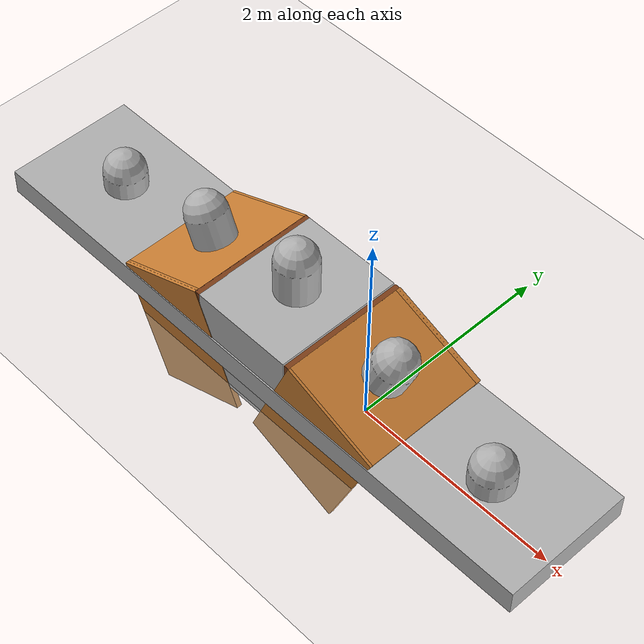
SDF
<?xml version='1.0'?>
<sdf version='1.9'>
  <world name='empty'>
    <physics name='1ms' type='ignored'>
      <max_step_size>0.001</max_step_size>
      <real_time_factor>1</real_time_factor>
      <real_time_update_rate>1000</real_time_update_rate>
    </physics>
    <plugin name='gz::sim::systems::Physics' filename='ignition-gazebo-physics-system' />
    <plugin name='gz::sim::systems::UserCommands' filename='ignition-gazebo-user-commands-system' />
    <plugin name='gz::sim::systems::SceneBroadcaster'
      filename='ignition-gazebo-scene-broadcaster-system' />
    <plugin name='gz::sim::systems::Contact' filename='ignition-gazebo-contact-system' />
    <gravity>0 0 -9.8</gravity>
    <magnetic_field>6e-06 2.3e-05 -4.2e-05</magnetic_field>
    <atmosphere type='adiabatic' />
    <scene>
      <ambient>0.4 0.4 0.4 1</ambient>
      <background>0.7 0.7 0.7 1</background>
      <shadows>true</shadows>
    </scene>
    <model name='ground_plane'>
      <static>true</static>
      <link name='link'>
        <collision name='collision'>
          <geometry>
            <plane>
              <normal>0 0 1</normal>
              <size>100 100</size>
            </plane>
          </geometry>
          <surface>
            <friction>
              <ode />
            </friction>
            <bounce />
            <contact />
          </surface>
        </collision>
        <visual name='visual'>
          <geometry>
            <plane>
              <normal>0 0 1</normal>
              <size>100 100</size>
            </plane>
          </geometry>
          <material>
            <ambient>0.8 0.8 0.8 1</ambient>
            <diffuse>0.8 0.8 0.8 1</diffuse>
            <specular>0.8 0.8 0.8 1</specular>
          </material>
        </visual>
        <pose>0 0 0 0 -0 0</pose>
        <inertial>
          <pose>0 0 0 0 -0 0</pose>
          <mass>1</mass>
          <inertia>
            <ixx>1</ixx>
            <ixy>0</ixy>
            <ixz>0</ixz>
            <iyy>1</iyy>
            <iyz>0</iyz>
            <izz>1</izz>
          </inertia>
        </inertial>
        <enable_wind>false</enable_wind>
      </link>
      <pose>0 0 0 0 -0 0</pose>
      <self_collide>false</self_collide>
    </model>
    <model name='Rampa'>
      <pose>0.194122 0 0.645781 0 0.3732 0</pose>
      <link name='Topo'>
        <inertial>
          <inertia>
            <ixx>0.16666</ixx>
            <ixy>0</ixy>
            <ixz>0</ixz>
            <iyy>0.16666</iyy>
            <iyz>0</iyz>
            <izz>0.16666</izz>
          </inertia>
          <mass>1</mass>
          <pose>0 0 0 0 -0 0</pose>
        </inertial>
        <collision name='Topo_collision'>
          <geometry>
            <box>
              <size>1 1.2 0.05</size>
            </box>
          </geometry>
          <surface>
            <friction>
              <ode />
            </friction>
            <bounce />
            <contact />
          </surface>
        </collision>
        <visual name='Topo_visual'>
          <geometry>
            <box>
              <size>1 1.2 0.05</size>
            </box>
          </geometry>
          <material>
            <ambient>0.8 0.5 0.2 1</ambient>
            <diffuse>0.8 0.5 0.2 1</diffuse>
            <specular>0.4 0.2 0.1 1</specular>
          </material>
        </visual>
        <pose>0 0 0 0 -0 0</pose>
        <enable_wind>false</enable_wind>
      </link>
      <static>true</static>
      <self_collide>false</self_collide>
      <link name='Lad1'>
        <pose>0 0.6 -0.575 1.57 -0 0</pose>
        <inertial>
          <inertia>
            <ixx>0.16666</ixx>
            <ixy>0</ixy>
            <ixz>0</ixz>
            <iyy>0.16666</iyy>
            <iyz>0</iyz>
            <izz>0.16666</izz>
          </inertia>
          <mass>1</mass>
          <pose>0 0 0 0 -0 0</pose>
        </inertial>
        <collision name='Lad1_collision'>
          <geometry>
            <box>
              <size>1 1.2 0.05</size>
            </box>
          </geometry>
          <surface>
            <friction>
              <ode />
            </friction>
            <bounce />
            <contact />
          </surface>
        </collision>
        <visual name='Lad1_visual'>
          <geometry>
            <box>
              <size>1 1.2 0.05</size>
            </box>
          </geometry>
          <material>
            <ambient>0.8 0.5 0.2 1</ambient>
            <diffuse>0.8 0.5 0.2 1</diffuse>
            <specular>0.4 0.2 0.1 1</specular>
          </material>
        </visual>
        <pose>0 0 0 0 -0 0</pose>
        <enable_wind>false</enable_wind>
      </link>
      <link name='Lad2'>
        <pose>0 -0.6 -0.575 1.57 -0 0</pose>
        <inertial>
          <inertia>
            <ixx>0.16666</ixx>
            <ixy>0</ixy>
            <ixz>0</ixz>
            <iyy>0.16666</iyy>
            <iyz>0</iyz>
            <izz>0.16666</izz>
          </inertia>
          <mass>1</mass>
          <pose>0 0 0 0 -0 0</pose>
        </inertial>
        <collision name='Lad2_collision'>
          <geometry>
            <box>
              <size>1 1.2 0.05</size>
            </box>
          </geometry>
          <surface>
            <friction>
              <ode />
            </friction>
            <bounce />
            <contact />
          </surface>
        </collision>
        <visual name='Lad2_visual'>
          <geometry>
            <box>
              <size>1 1.2 0.05</size>
            </box>
          </geometry>
          <material>
            <ambient>0.8 0.5 0.2 1</ambient>
            <diffuse>0.8 0.5 0.2 1</diffuse>
            <specular>0.4 0.2 0.1 1</specular>
          </material>
        </visual>
        <pose>0 0 0 0 -0 0</pose>
        <enable_wind>false</enable_wind>
      </link>
      <link name='Fre'>
        <pose>-0.34 0 -0.45 0 1.2 0</pose>
        <inertial>
          <inertia>
            <ixx>0.16666</ixx>
            <ixy>0</ixy>
            <ixz>0</ixz>
            <iyy>0.16666</iyy>
            <iyz>0</iyz>
            <izz>0.16666</izz>
          </inertia>
          <mass>1</mass>
          <pose>0 0 0 0 -0 0</pose>
        </inertial>
        <collision name='Fre_collision'>
          <geometry>
            <box>
              <size>1 1.24 0.05</size>
            </box>
          </geometry>
          <surface>
            <friction>
              <ode />
            </friction>
            <bounce />
            <contact />
          </surface>
        </collision>
        <visual name='Fre_visual'>
          <geometry>
            <box>
              <size>1 1.24 0.05</size>
            </box>
          </geometry>
          <material>
            <ambient>0.5 0.25 0.1 1</ambient>
            <diffuse>0.5 0.25 0.1 1</diffuse>
            <specular>0.3 0.15 0.05 1</specular>
          </material>
        </visual>
        <pose>0 0 0 0 -0 0</pose>
        <enable_wind>false</enable_wind>
      </link>
      <link name='TopoR2'>
        <pose>-1.86748 0 -0.743436 3.14159 0.776593 3.14159</pose>
        <inertial>
          <inertia>
            <ixx>0.16666</ixx>
            <ixy>0</ixy>
            <ixz>0</ixz>
            <iyy>0.16666</iyy>
            <iyz>0</iyz>
            <izz>0.16666</izz>
          </inertia>
          <mass>1</mass>
          <pose>0 0 0 0 -0 0</pose>
        </inertial>
        <collision name='TopoR2_collision'>
          <geometry>
            <box>
              <size>1 1.2 0.05</size>
            </box>
          </geometry>
          <surface>
            <friction>
              <ode />
            </friction>
            <bounce />
            <contact />
          </surface>
        </collision>
        <visual name='TopoR2_visual'>
          <geometry>
            <box>
              <size>1 1.2 0.05</size>
            </box>
          </geometry>
          <material>
            <ambient>0.8 0.5 0.2 1</ambient>
            <diffuse>0.8 0.5 0.2 1</diffuse>
            <specular>0.4 0.2 0.1 1</specular>
          </material>
        </visual>
        <pose>0 0 0 0 -0 0</pose>
        <enable_wind>false</enable_wind>
      </link>
      <static>true</static>
      <self_collide>false</self_collide>
      <link name='Lad1R2'>
        <pose>-1.46449 0.6 -1.15359 -1.57159 0.776593 3.14159</pose>
        <inertial>
          <inertia>
            <ixx>0.16666</ixx>
            <ixy>0</ixy>
            <ixz>0</ixz>
            <iyy>0.16666</iyy>
            <iyz>0</iyz>
            <izz>0.16666</izz>
          </inertia>
          <mass>1</mass>
          <pose>0 0 0 0 -0 0</pose>
        </inertial>
        <collision name='Lad1R2_collision'>
          <geometry>
            <box>
              <size>1 1.2 0.05</size>
            </box>
          </geometry>
          <surface>
            <friction>
              <ode />
            </friction>
            <bounce />
            <contact />
          </surface>
        </collision>
        <visual name='Lad1R2_visual'>
          <geometry>
            <box>
              <size>1 1.2 0.05</size>
            </box>
          </geometry>
          <material>
            <ambient>0.8 0.5 0.2 1</ambient>
            <diffuse>0.8 0.5 0.2 1</diffuse>
            <specular>0.4 0.2 0.1 1</specular>
          </material>
        </visual>
        <pose>0 0 0 0 -0 0</pose>
        <enable_wind>false</enable_wind>
      </link>
      <link name='Lad2R2'>
        <pose>-1.46449 -0.6 -1.15359 -1.57159 0.776593 3.14159</pose>
        <inertial>
          <inertia>
            <ixx>0.16666</ixx>
            <ixy>0</ixy>
            <ixz>0</ixz>
            <iyy>0.16666</iyy>
            <iyz>0</iyz>
            <izz>0.16666</izz>
          </inertia>
          <mass>1</mass>
          <pose>0 0 0 0 -0 0</pose>
        </inertial>
        <collision name='Lad2R2_collision'>
          <geometry>
            <box>
              <size>1 1.2 0.05</size>
            </box>
          </geometry>
          <surface>
            <friction>
              <ode />
            </friction>
            <bounce />
            <contact />
          </surface>
        </collision>
        <visual name='Lad2R2_visual'>
          <geometry>
            <box>
              <size>1 1.2 0.05</size>
            </box>
          </geometry>
          <material>
            <ambient>0.8 0.5 0.2 1</ambient>
            <diffuse>0.8 0.5 0.2 1</diffuse>
            <specular>0.4 0.2 0.1 1</specular>
          </material>
        </visual>
        <pose>0 0 0 0 -0 0</pose>
        <enable_wind>false</enable_wind>
      </link>
      <link name='FreR2'>
        <pose>-1.32796 0 -0.834099 0 1.2 0</pose>
        <inertial>
          <inertia>
            <ixx>0.16666</ixx>
            <ixy>0</ixy>
            <ixz>0</ixz>
            <iyy>0.16666</iyy>
            <iyz>0</iyz>
            <izz>0.16666</izz>
          </inertia>
          <mass>1</mass>
          <pose>0 0 0 0 -0 0</pose>
        </inertial>
        <collision name='FreR2_collision'>
          <geometry>
            <box>
              <size>1 1.24 0.05</size>
            </box>
          </geometry>
          <surface>
            <friction>
              <ode />
            </friction>
            <bounce />
            <contact />
          </surface>
        </collision>
        <visual name='FreR2_visual'>
          <geometry>
            <box>
              <size>1 1.24 0.05</size>
            </box>
          </geometry>
          <material>
            <ambient>0.5 0.25 0.1 1</ambient>
            <diffuse>0.5 0.25 0.1 1</diffuse>
            <specular>0.3 0.15 0.05 1</specular>
          </material>
        </visual>
        <pose>0 0 0 0 -0 0</pose>
        <enable_wind>false</enable_wind>
      </link>
      <link name='meio'>
        <pose>-0.861419 0 -0.599071 0 1.2 0</pose>
        <inertial>
          <inertia>
            <ixx>0.16666</ixx>
            <ixy>0</ixy>
            <ixz>0</ixz>
            <iyy>0.16666</iyy>
            <iyz>0</iyz>
            <izz>0.16666</izz>
          </inertia>
          <mass>1</mass>
          <pose>0 0 0 0 -0 0</pose>
        </inertial>
        <collision name='meio_collision'>
          <geometry>
            <box>
              <size>0.9 1.24 1</size>
            </box>
          </geometry>
          <surface>
            <friction>
              <ode />
            </friction>
            <bounce />
            <contact />
          </surface>
        </collision>
        <visual name='meio_visual'>
          <geometry>
            <box>
              <size>0.9 1.24 1</size>
            </box>
          </geometry>
          <material>
            <ambient>0.3 0.3 0.3 1</ambient>
            <diffuse>0.7 0.7 0.7 1</diffuse>
            <specular>1 1 1 1</specular>
          </material>
        </visual>
        <pose>0 0 0 0 -0 0</pose>
        <enable_wind>false</enable_wind>
      </link>
      <link name='Caps1'>
        <pose>-1.0426 0 -0.133051 3.14159 0.371593 3.14159</pose>
        <inertial>
          <inertia>
            <ixx>0.074153999999999998</ixx>
            <ixy>0</ixy>
            <ixz>0</ixz>
            <iyy>0.074153999999999998</iyy>
            <iyz>0</iyz>
            <izz>0.018769000000000001</izz>
          </inertia>
          <mass>1</mass>
          <pose>0 0 0 0 -0 0</pose>
        </inertial>
        <collision name='Caps1_collision'>
          <geometry>
            <capsule>
              <radius>0.20000000000000001</radius>
              <length>0.59999999999999998</length>
            </capsule>
          </geometry>
          <surface>
            <friction>
              <ode />
            </friction>
            <bounce />
            <contact />
          </surface>
        </collision>
        <visual name='Caps1_visual'>
          <geometry>
            <capsule>
              <radius>0.20000000000000001</radius>
              <length>0.59999999999999998</length>
            </capsule>
          </geometry>
          <material>
            <ambient>0.3 0.3 0.3 1</ambient>
            <diffuse>0.7 0.7 0.7 1</diffuse>
            <specular>1 1 1 1</specular>
          </material>
        </visual>
        <pose>0 0 0 0 -0 0</pose>
        <enable_wind>false</enable_wind>
      </link>
      <link name='Caps2'>
        <pose>0 0 0 0 -0 0</pose>
        <inertial>
          <inertia>
            <ixx>0.074153999999999998</ixx>
            <ixy>0</ixy>
            <ixz>0</ixz>
            <iyy>0.074153999999999998</iyy>
            <iyz>0</iyz>
            <izz>0.018769000000000001</izz>
          </inertia>
          <mass>1</mass>
          <pose>0 0 0 0 -0 0</pose>
        </inertial>
        <collision name='Caps2_collision'>
          <geometry>
            <capsule>
              <radius>0.20000000000000001</radius>
              <length>0.59999999999999998</length>
            </capsule>
          </geometry>
          <surface>
            <friction>
              <ode />
            </friction>
            <bounce />
            <contact />
          </surface>
        </collision>
        <visual name='Caps2_visual'>
          <geometry>
            <capsule>
              <radius>0.20000000000000001</radius>
              <length>0.59999999999999998</length>
            </capsule>
          </geometry>
          <material>
            <ambient>0.3 0.3 0.3 1</ambient>
            <diffuse>0.7 0.7 0.7 1</diffuse>
            <specular>1 1 1 1</specular>
          </material>
        </visual>
        <pose>0 0 0 0 -0 0</pose>
        <enable_wind>false</enable_wind>
      </link>
      <link name='Caps3'>
        <pose>-1.86748 0 -0.743436 3.14159 0.776593 3.14159</pose>
        <inertial>
          <inertia>
            <ixx>0.074153999999999998</ixx>
            <ixy>0</ixy>
            <ixz>0</ixz>
            <iyy>0.074153999999999998</iyy>
            <iyz>0</iyz>
            <izz>0.018769000000000001</izz>
          </inertia>
          <mass>1</mass>
          <pose>0 0 0 0 -0 0</pose>
        </inertial>
        <collision name='Caps3_collision'>
          <geometry>
            <capsule>
              <radius>0.20000000000000001</radius>
              <length>0.59999999999999998</length>
            </capsule>
          </geometry>
          <surface>
            <friction>
              <ode />
            </friction>
            <bounce />
            <contact />
          </surface>
        </collision>
        <visual name='Caps3_visual'>
          <geometry>
            <capsule>
              <radius>0.20000000000000001</radius>
              <length>0.59999999999999998</length>
            </capsule>
          </geometry>
          <material>
            <ambient>0.3 0.3 0.3 1</ambient>
            <diffuse>0.7 0.7 0.7 1</diffuse>
            <specular>1 1 1 1</specular>
          </material>
        </visual>
        <pose>0 0 0 0 -0 0</pose>
        <enable_wind>false</enable_wind>
      </link>

      <link name='Caps4'>
        <pose relative_to='Base'>2.2 0 0 0 0 0</pose>
        <inertial>
          <inertia>
            <ixx>0.074153999999999998</ixx>
            <ixy>0</ixy>
            <ixz>0</ixz>
            <iyy>0.074153999999999998</iyy>
            <iyz>0</iyz>
            <izz>0.018769000000000001</izz>
          </inertia>
          <mass>1</mass>
          <pose>0 0 0 0 -0 0</pose>
        </inertial>
        <collision name='Caps4_collision'>
          <geometry>
            <capsule>
              <radius>0.20000000000000001</radius>
              <length>0.59999999999999998</length>
            </capsule>
          </geometry>
          <surface>
            <friction>
              <ode />
            </friction>
            <bounce />
            <contact />
          </surface>
        </collision>
        <visual name='Caps4_visual'>
          <geometry>
            <capsule>
              <radius>0.20000000000000001</radius>
              <length>0.59999999999999998</length>
            </capsule>
          </geometry>
          <material>
            <ambient>0.3 0.3 0.3 1</ambient>
            <diffuse>0.7 0.7 0.7 1</diffuse>
            <specular>1 1 1 1</specular>
          </material>
        </visual>
        <pose>0 0 0 0 -0 0</pose>
        <enable_wind>false</enable_wind>
      </link>

      <link name='Caps5'>
        <pose relative_to='Base'>-2.2 0 0 0 0 0</pose>
        <inertial>
          <inertia>
            <ixx>0.074153999999999998</ixx>
            <ixy>0</ixy>
            <ixz>0</ixz>
            <iyy>0.074153999999999998</iyy>
            <iyz>0</iyz>
            <izz>0.018769000000000001</izz>
          </inertia>
          <mass>1</mass>
          <pose>0 0 0 0 -0 0</pose>
        </inertial>
        <collision name='Caps5_collision'>
          <geometry>
            <capsule>
              <radius>0.20000000000000001</radius>
              <length>0.59999999999999998</length>
            </capsule>
          </geometry>
          <surface>
            <friction>
              <ode />
            </friction>
            <bounce />
            <contact />
          </surface>
        </collision>
        <visual name='Caps5_visual'>
          <geometry>
            <capsule>
              <radius>0.20000000000000001</radius>
              <length>0.59999999999999998</length>
            </capsule>
          </geometry>
          <material>
            <ambient>0.3 0.3 0.3 1</ambient>
            <diffuse>0.7 0.7 0.7 1</diffuse>
            <specular>1 1 1 1</specular>
          </material>
        </visual>
        <pose>0 0 0 0 -0 0</pose>
        <enable_wind>false</enable_wind>
      </link>

      <link name='Base'>
        <pose relative_to='meio'>0.1 0 0 0 1.57 0</pose>
        <inertial>
          <inertia>
            <ixx>0.16666</ixx>
            <ixy>0</ixy>
            <ixz>0</ixz>
            <iyy>0.16666</iyy>
            <iyz>0</iyz>
            <izz>0.16666</izz>
          </inertia>
          <mass>1</mass>
          <pose>0 0 0 0 -0 0</pose>
        </inertial>
        <collision name='Base_collision'>
          <geometry>
            <box>
              <size>6 1.27 0.25</size>
            </box>
          </geometry>
          <surface>
            <friction>
              <ode />
            </friction>
            <bounce />
            <contact />
          </surface>
        </collision>
        <visual name='Base_visual'>
          <geometry>
            <box>
              <size>6 1.27 0.25</size>
            </box>
          </geometry>
          <material>
            <ambient>0.3 0.3 0.3 1</ambient>
            <diffuse>0.7 0.7 0.7 1</diffuse>
            <specular>1 1 1 1</specular>
          </material>
        </visual>
        <pose>0 0 0 0 -0 0</pose>
        <enable_wind>false</enable_wind>
      </link>

    </model>

    <light name='sun' type='directional'>
      <pose>0 0 10 0 -0 0</pose>
      <cast_shadows>true</cast_shadows>
      <intensity>1</intensity>
      <direction>-0.5 0.1 -0.9</direction>
      <diffuse>0.8 0.8 0.8 1</diffuse>
      <specular>0.2 0.2 0.2 1</specular>
      <attenuation>
        <range>1000</range>
        <linear>0.01</linear>
        <constant>0.90000000000000002</constant>
        <quadratic>0.001</quadratic>
      </attenuation>
      <spot>
        <inner_angle>0</inner_angle>
        <outer_angle>0</outer_angle>
        <falloff>0</falloff>
      </spot>
    </light>
  </world>
</sdf>
